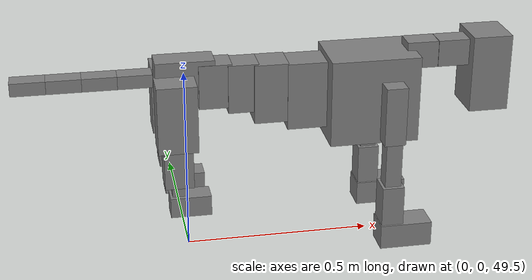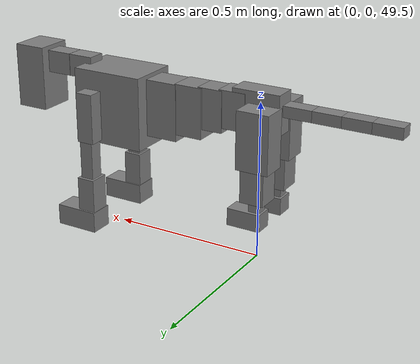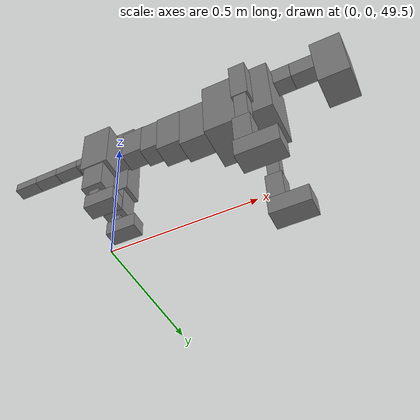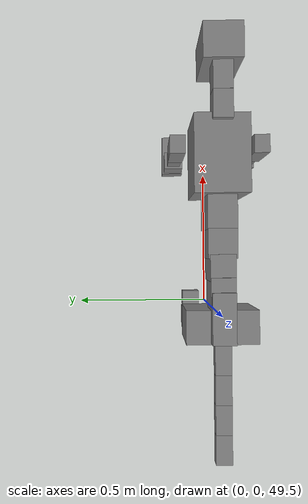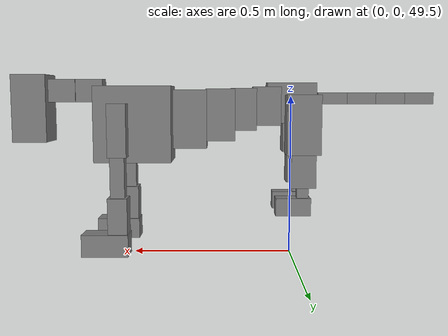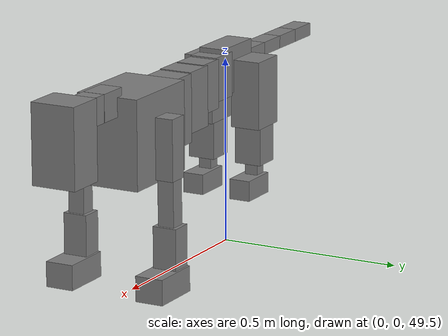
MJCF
<mujoco model="dog">

    <default>
        <joint armature="0.02" stiffness="1" damping="0.2" limited="true"/>
        <geom condim="3" friction="1 0.05 0.05" margin="0.01"/>
        <motor ctrllimited="true" ctrlrange="-1.0 1.0" forcelimited="true" gear="50"/>
    </default>

    <compiler inertiafromgeom="true" angle="radian"/>

    <option timestep="0.016" iterations="50" tolerance="1e-10" solver="Newton" jacobian="dense" cone="pyramidal"/>

    <size nconmax="20000" njmax="60000" nstack="5000000"/>
    <visual>
        <map force="0.1" zfar="30"/>
        <rgba haze="0.15 0.25 0.35 1"/>
        <quality shadowsize="2048"/>
        <global offwidth="800" offheight="800"/>
    </visual>

    <asset>
        <texture type="skybox" builtin="gradient" rgb1="0.3 0.5 0.7" rgb2="0 0 0" width="512" height="512"/>
        <texture name="texplane" type="2d" builtin="checker" rgb1=".2 .3 .4" rgb2=".1 0.15 0.2" width="512" height="512"
                 mark="cross" markrgb=".8 .8 .8"/>
        <texture name="texgeom" type="cube" builtin="flat" mark="cross" width="127" height="1278" rgb1="0.8 0.6 0.4"
                 rgb2="0.8 0.6 0.4" markrgb="1 1 1" random="0.01"/>

        <material name="matplane" reflectance="0.3" texture="texplane" texrepeat="1 1" texuniform="true"/>
        <material name="matgeom" texture="texgeom" texuniform="true" rgba="0.8 0.6 .4 1"/>
    </asset>

    <worldbody>
        <geom name="floor" pos="0 0 0" size="0 0 .25" type="plane" material="matplane" condim="3"/>

        <light directional="false" diffuse=".2 .2 .2" specular="0 0 0" pos="0 0 5" dir="0 0 -1" castshadow="false"/>
        <light mode="targetbodycom" target="torso" directional="false" diffuse=".8 .8 .8" specular="0.3 0.3 0.3"
               pos="0 0 4.0" dir="0 0 -1"/>

        <body name="root" pos="0 0 50">
            <freejoint name="root_1"/>
            <geom type="box" pos="0 0 -0.02" size="0.0774  0.0358  0.063" density="2030"/>

            <body name="spine1" pos="0.054 0 0">
                <joint name="spine1_y" axis="0 1 0" range="0 0.7" limited="true"/>
                <geom type="box" pos="0.02375 0 -0.03" size="0.04375  0.0375  0.05985" density="2030"/>

                <body name="spine2" pos="0.0612 0 0">
                    <joint name="spine2_y" axis="0 1 0" range="-0.15 0.15" limited="true"/>
                    <geom type="box" pos="0.03555  0  -0.04" size="0.04055  0.039  0.06615" density="2030"/>

                    <body name="spine3" pos="0.0730 0 0">
                        <joint name="spine3_y" axis="0 1 0" range="-0.15 0.15" limited="true"/>
                        <geom type="box" pos="0.03555  0  -0.057" size="0.04555  0.0445  0.081" density="2030"/>

                        <body name="spine4" pos="0.0780 0 0">
                            <joint name="spine4_y" axis="0 1 0" range="-0.15 0.15" limited="true"/>
                            <geom type="box" pos="0.05265  0  -0.07" size="0.05265  0.045  0.09135" density="2030"/>

                            <body name="torso" pos="0.1082 0 0">
                                <joint name="torso_y" axis="0 1 0" range="-0.15 0.15" limited="true"/>
                                <geom type="box" pos="0.11925  0  -0.085" size="0.11925  0.085  0.11745"
                                      density="2030"/>

                                <body name="neck1" pos="0.2160  0   0.0180">
                                    <joint name="neck1_y" axis="0 1 0" range="-1.2  -1" limited="true"/>
                                    <geom type="box" pos="0.0423  0  0" size="0.0423  0.03  0.036" density="2325"/>

                                    <body name="neck2" pos="0.0853  0  0">
                                        <joint name="neck2_y" axis="0 1 0" range="0.1  0" limited="true"/>
                                        <geom type="box" pos="0.0423  0  0" size="0.0423  0.03  0.036" density="2325"/>

                                        <body name="head" pos="0.0853  0  0">
                                            <joint name="head_y" axis="0 1 0" range="-0.3  -0.2" limited="true"/>
                                            <geom type="box" pos="0.0531  0  -0.055" size="0.0531  0.06  0.1044"
                                                  density="4030"/>

                                        </body>
                                    </body>
                                </body>

                                <body name="front_shoulder" pos="0.156  0   -0.0480">
                                    <joint name="front_shoulder_y" axis="0 1 0" range="-1 1.5" limited="true"/>
                                    <geom type="box" pos="0 0.13 -0.0535" size="0.0283  0.0242  0.0801" density="1158"/>
                                    <geom type="box" pos="0 -0.13 -0.0535" size="0.0283  0.0242  0.0801"
                                          density="1158"/>

                                    <body name="front_elbow" pos="0  0  -0.1070">
                                        <joint name="front_elbow_y" axis="0 1 0" range="-2 0" limited="true"/>
                                        <geom type="box" pos="0 0.13 -0.0800" size="0.0216  0.0221  0.0800"
                                              density="1081"/>
                                        <geom type="box" pos="0 -0.13 -0.0800" size="0.0216  0.0221  0.0800"
                                              density="1081"/>

                                        <body name="front_wrist" pos="0  0  -0.1599">
                                            <joint name="front_wrist_y" axis="0 1 0" range="-0.2 0" limited="true"/>
                                            <geom type="box" pos="0 0.13 -0.0554" size="0.0294  0.0326  0.0685"
                                                  density="1664"/>
                                            <geom type="box" pos="0 -0.13 -0.0554" size="0.0294  0.0326  0.0685"
                                                  density="1664"/>

                                            <body name="front_finger_end" pos="0  0  -0.1108">
                                                <joint name="front_finger_y" axis="0 1 0" range="-0.4 1"
                                                       limited="true"/>
                                                <geom type="box" pos="0.0382  0.13  -0.0184"
                                                      size="0.0700  0.0382  0.0334" density="1515"/>
                                                <geom type="box" pos="0.0382  -0.13  -0.0184"
                                                      size="0.0700  0.0382  0.0334" density="1515"/>

                                            </body>

                                        </body>
                                    </body>
                                </body>

                            </body>
                        </body>
                    </body>
                </body>
            </body>

            <body name="back_hip" pos="-0.03 0 -0.018">
                <joint name="back_hip_y" axis="0 1 0" range="-1.5 0.3" limited="true"/>
                <geom type="box" pos="0 0.07 -0.0684" size="0.0522  0.0409  0.0912" density="1154"/>
                <geom type="box" pos="0 -0.07 -0.0684" size="0.0522  0.0409  0.0912" density="1154"/>

                <body name="back_knee" pos="0  0  -0.1369">
                    <joint name="back_knee_y" axis="0 1 0" range="0 2.8" limited="true"/>
                    <geom type="box" pos="0 0.07 -0.0543" size="0.0379  0.0374  0.0698" density="1227"/>
                    <geom type="box" pos="0 -0.07 -0.0543" size="0.0379  0.0374  0.0698" density="1227"/>

                    <body name="back_ankle" pos="0  0  -0.1086">
                        <joint name="back_ankle_y" axis="0 1 0" range="-2.2 0" limited="true"/>
                        <geom type="box" pos="0 0.07 -0.0316" size="0.0179  0.0179  0.0428" density="1284"/>
                        <geom type="box" pos="0 -0.07 -0.0316" size="0.0179  0.0179  0.0428" density="1284"/>

                        <body name="back_toe_end" pos="0  0  -0.0631">
                            <joint name="back_toe_y" axis="0 1 0" range="-0.4 1" limited="true"/>
                            <geom type="box" pos="0.0293  0.07  -0.0124" size="0.0538  0.0293  0.0274" density="1515"/>
                            <geom type="box" pos="0.0293  -0.07  -0.0124" size="0.0538  0.0293  0.0274" density="1515"/>

                        </body>
                    </body>
                </body>
            </body>

            <body name="tail1" pos="-0.074 0 -0.006">
                <joint name="tail1_y" axis="0 1 0" range="-0.2 0.2" limited="true"/>
                <geom type="box" pos="-0.0536  0  0" size="0.045  0.025  0.0175" density="1587"/>

                <body name="tail2" pos="-0.09 0 0">
                    <joint name="tail2_y" axis="0 1 0" range="-0.2 0.2" limited="true"/>
                    <geom type="box" pos="-0.0536  0  0" size="0.045  0.025  0.0175" density="1587"/>

                    <body name="tail3" pos="-0.09 0 0">
                        <joint name="tail3_y" axis="0 1 0" range="-0.2 0.2" limited="true"/>
                        <geom type="box" pos="-0.0536  0  0" size="0.045  0.025  0.0175" density="1587"/>

                        <body name="tail4" pos="-0.09 0 0">
                            <joint name="tail4_y" axis="0 1 0" range="-0.2 0.2" limited="true"/>
                            <geom type="box" pos="-0.0536  0  0" size="0.045  0.025  0.0175" density="1587"/>

                        </body>
                    </body>
                </body>
            </body>
        </body>
    </worldbody>

    <actuator>
        <motor joint="spine1_y" forcerange="-150 150     "/>
        <motor joint="spine2_y" forcerange="-150 150     "/>
        <motor joint="spine3_y" forcerange="-150 150     "/>
        <motor joint="spine4_y" forcerange="-150 150     "/>
        <motor joint="torso_y" forcerange="-150 150     "/>
        <motor joint="neck1_y" forcerange="-100 100       "/>
        <motor joint="neck2_y" forcerange="-100 100       "/>
        <motor joint="head_y" forcerange="-150 150       "/>
        <motor joint="front_shoulder_y" forcerange="-118.80 142.27"/>
        <motor joint="front_elbow_y" forcerange="-152.49 108.39"/>
        <motor joint="front_wrist_y" forcerange="-141.69 119.45"/>
        <motor joint="front_finger_y" forcerange="-74.93 88.81"/>
        <motor joint="back_hip_y" forcerange="-380.62 365.20"/>
        <motor joint="back_knee_y" forcerange="-347.41 396.23"/>
        <motor joint="back_angle_y" forcerange="-77.75 109.42"/>
        <motor joint="back_toe_y" forcerange="-27.89 126.80"/>
        <motor joint="tail1_y" forcerange="-50 50     "/>
        <motor joint="tail2_y" forcerange="-50 50     "/>
        <motor joint="tail3_y" forcerange="-50 50     "/>
        <motor joint="tail4_y" forcerange="-50 50     "/>
    </actuator>
</mujoco>
